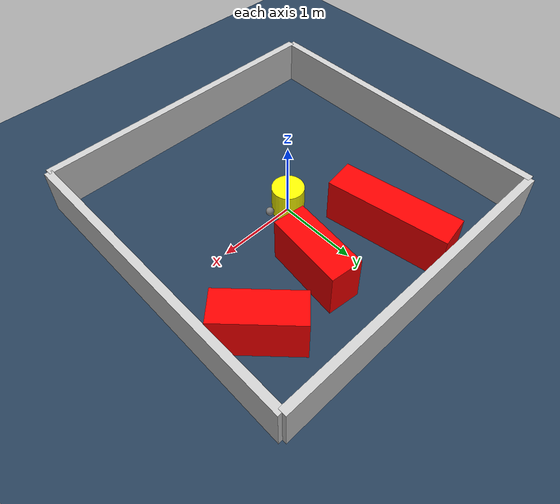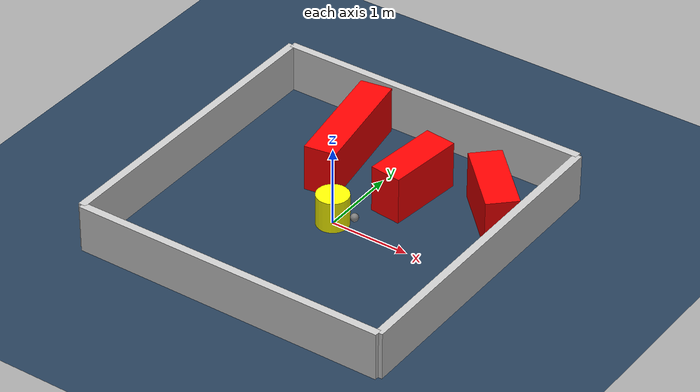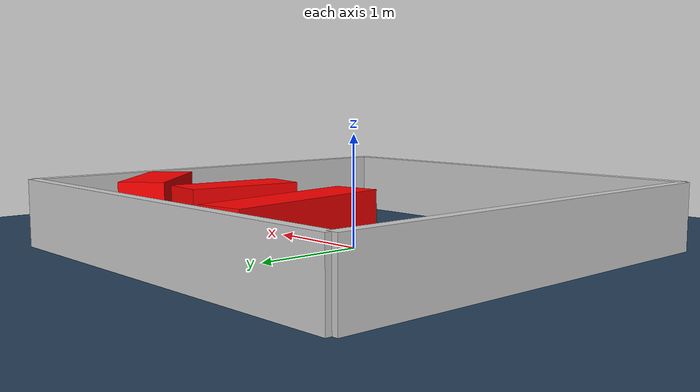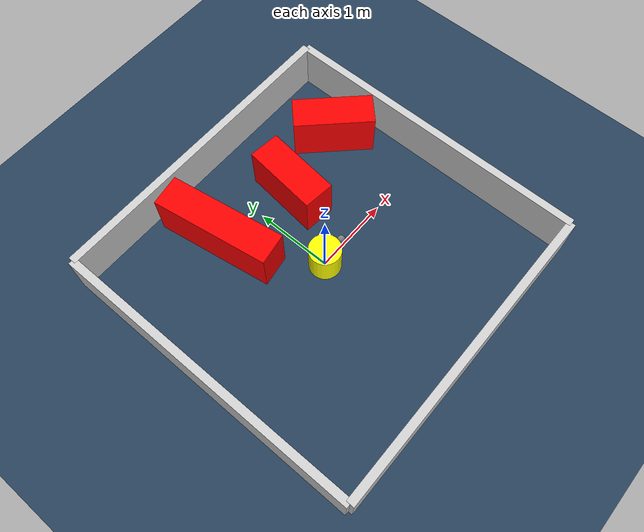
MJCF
<?xml version="1.0" ?>
<mujoco model="generated_environment">
  <option timestep="0.01" integrator="RK4" cone="elliptic"/>
  <default>
    <geom density="1"/>
  </default>
  <asset>
    <texture builtin="gradient" height="3072" rgb1="0.3 0.5 0.7" rgb2="0 0 0" type="skybox" width="512"/>
    <texture builtin="checker" height="300" mark="edge" markrgb="0.8 0.8 0.8" name="groundplane" rgb1="0.2 0.3 0.4" rgb2="0.1 0.2 0.3" type="2d" width="300"/>
    <material name="groundplane" reflectance="0.2" texrepeat="5 5" texture="groundplane" texuniform="true"/>
    <material name="robot" rgba="0.0 1.0 0.0 1"/>
  </asset>
  <worldbody>
    <light dir="0 0 -1" directional="true" pos="0 0 1.5"/>
    <geom condim="4" friction="1.0 0.005 0.001" material="groundplane" name="floor" size="0 0 0.05" type="plane"/>
    <body name="walls">
      <geom name="wall_1" condim="4" pos="-2.0 0.0 0.3" rgba="0.800000011920929 0.800000011920929 0.800000011920929 1.0" size="0.05 2.0 0.3" type="box"/>
      <geom name="wall_2" condim="4" pos="2.0 0.0 0.3" rgba="0.800000011920929 0.800000011920929 0.800000011920929 1.0" size="0.05 2.0 0.3" type="box"/>
      <geom name="wall_3" condim="4" pos="0.0 -2.0 0.3" rgba="0.800000011920929 0.800000011920929 0.800000011920929 1.0" size="2.0 0.05 0.3" type="box"/>
      <geom name="wall_4" condim="4" pos="0.0 2.0 0.3" rgba="0.800000011920929 0.800000011920929 0.800000011920929 1.0" size="2.0 0.05 0.3" type="box"/>
    </body>
    <body name="robot">
      <joint name="joint_x" type="slide" pos="0 0 0" axis="1 0 0"/>
      <joint name="joint_y" type="slide" pos="0 0 0" axis="0 1 0"/>
      <geom name="robot" type="sphere" pos="0.3 0.0 0.2" size="0.05" mass="5." friction="1.0 0.005 0.0001" condim="4" rgba="0.5 0.5 0.5 1.0"/>
      <site name="sensor_ball"/>
    </body>
    <body name="obstacle_movable_1">
      <geom name="obstacle_movable_1" condim="4" pos="0.0 0.0 0.2" euler="0 0 0.0" friction="1.0 0.005 0.001" rgba="1.0 1.0 0.0 1.0" size="0.2 0.2 0.0" type="cylinder" mass="0.1"/>
      <joint type="free"/>
    </body>
    <body name="obstacle_2_static">
      <geom name="obstacle_2_static" condim="4" pos="1.4493380210319609 1.0901125600785175 0.3" euler="0 0 314.32438075511214" friction="1.0 0.005 0.001" rgba="1 0 0 1" size="0.5042582079616971 0.2 0.3" type="box"/>
    </body>
    <body name="obstacle_3_static">
      <geom name="obstacle_3_static" condim="4" pos="0.46647084409471984 0.9210846680103317 0.3" euler="0 0 83.71805367202587" friction="1.0 0.005 0.001" rgba="1 0 0 1" size="0.48680729377312487 0.2 0.3" type="box"/>
    </body>
    <body name="obstacle_4_static">
      <geom name="obstacle_4_static" condim="4" pos="-0.5713331719219379 1.1267531852952766 0.3" euler="0 0 99.24743595187947" friction="1.0 0.005 0.001" rgba="1 0 0 1" size="0.7528228641705151 0.2 0.3" type="box"/>
    </body>
  </worldbody>
  <actuator>
    <motor name="actuator_x" joint="joint_x" gear="1" ctrlrange="-1 1"/>
    <motor name="actuator_y" joint="joint_y" gear="1" ctrlrange="-1 1"/>
  </actuator>
</mujoco>
